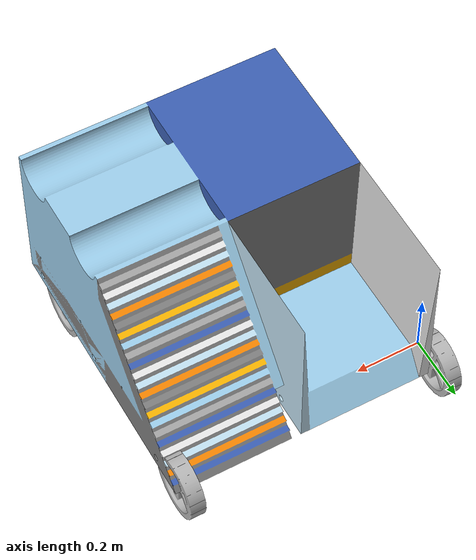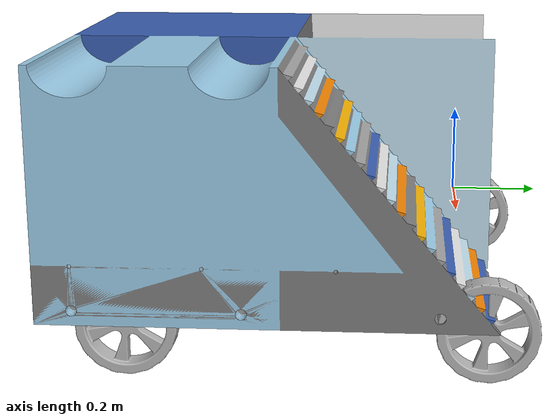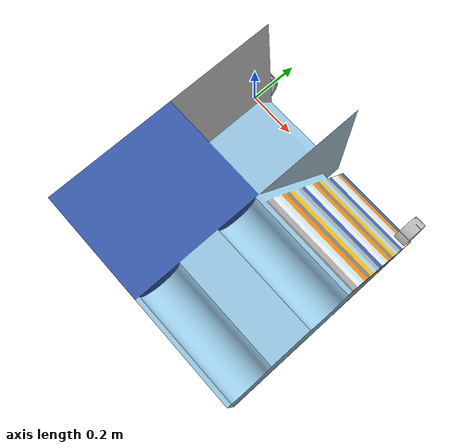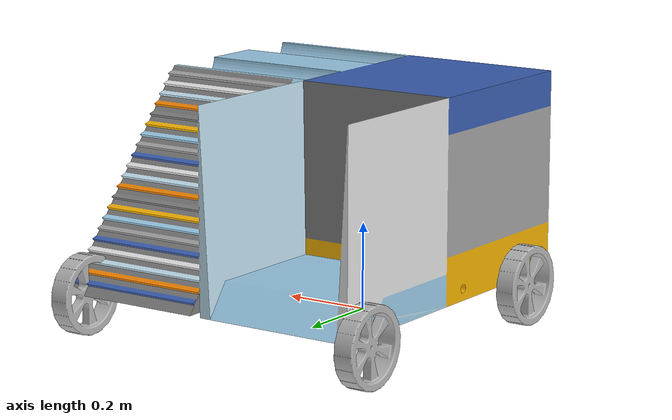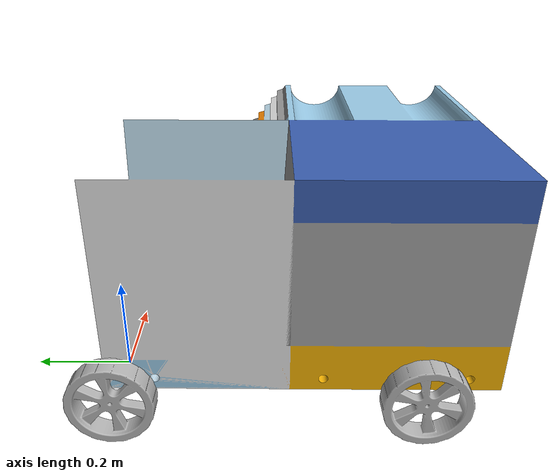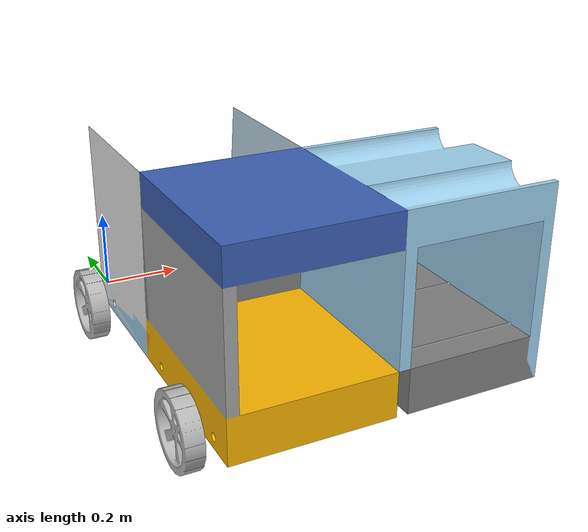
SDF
<?xml version="1.0"?>
<sdf version="1.8">

  <model name="R1">
    <static>false</static>

    <!-- ================= BASE ================= -->
    <link name="base_link">
      <inertial>
        <pose>0.419 -0.448 0.116 0 0 0</pose>
        <mass>183.77</mass>
        <inertia>
          <ixx>15.435</ixx>
          <ixy>-0.647</ixy>
          <ixz>0.276</ixz>
          <iyy>17.277</iyy>
          <iyz>1.909</iyz>
          <izz>21.853</izz>
        </inertia>
      </inertial>

      <collision name="base_collision">
        <pose>0 0 0 1.5707 0 0</pose>
        <geometry>
          <mesh>
            <uri>model://R1/meshes/R1.dae</uri>
          </mesh>
        </geometry>
        <surface>
          <contact>
            <ode>
              <kp>1e6</kp>
              <kd>100</kd>
              <max_vel>0.01</max_vel>
              <min_depth>0.001</min_depth>
            </ode>
          </contact>
        </surface>
      </collision>

      <visual name="base_visual">
        <pose>0 0 0 1.5707 0 0</pose>
        <geometry>
          <mesh>
            <uri>model://R1/meshes/R1.dae</uri>
          </mesh>
        </geometry>
      </visual>
    </link>

    <!-- ================= WHEELS ================= -->

    <!-- BACK LEFT -->
    <link name="back_left_wheel">
      <pose>0.82 0 -0.075 1.5707 0 0</pose>
      <inertial>
        <mass>0.5</mass>
        <inertia>
          <ixx>0.001</ixx>
          <iyy>0.001</iyy>
          <izz>0.001</izz>
        </inertia>
      </inertial>

      <collision name="collision">
        <geometry>
          <mesh>
            <uri>model://R1/meshes/wheel.dae</uri>
          </mesh>
        </geometry>
        <surface>
          <friction>
            <ode>
              <mu>0.4</mu>
              <mu2>0.2</mu2>
              <fdir1>0 1 0</fdir1>
            </ode>
          </friction>
        </surface>
      </collision>

      <visual name="visual">
        <geometry>
          <mesh>
            <uri>model://R1/meshes/wheel.dae</uri>
          </mesh>
        </geometry>
      </visual>
    </link>

    <joint name="back_left_wheel_joint" type="revolute">
      <parent>base_link</parent>
      <child>back_left_wheel</child>
      <axis>
        <xyz>1 0 0</xyz>
      </axis>
      <physics>
        <ode>
          <max_force>200</max_force>
        </ode>
      </physics>
    </joint>

    <!-- FRONT LEFT -->
    <link name="front_left_wheel">
      <pose>0.82 -0.700 -0.075 1.5707 0 0</pose>
      <inertial>
        <mass>0.5</mass>
        <inertia>
          <ixx>0.001</ixx>
          <iyy>0.001</iyy>
          <izz>0.001</izz>
        </inertia>
      </inertial>

      <collision name="collision">
        <geometry>
          <mesh>
            <uri>model://R1/meshes/wheel.dae</uri>
          </mesh>
        </geometry>
        <surface>
          <friction>
            <ode>
              <mu>0.4</mu>
              <mu2>0.2</mu2>
              <fdir1>0 1 0</fdir1>
            </ode>
          </friction>
        </surface>
      </collision>

      <visual name="visual">
        <geometry>
          <mesh>
            <uri>model://R1/meshes/wheel.dae</uri>
          </mesh>
        </geometry>
      </visual>
    </link>
    <joint name="front_left_wheel_joint" type="revolute">
      <parent>base_link</parent>
      <child>front_left_wheel</child>
      <axis>
        <xyz>1 0 0</xyz>
      </axis>
      <physics>
        <ode>
          <max_force>200</max_force>
        </ode>
      </physics>
    </joint>

    <!-- BACK RIGHT -->
    <link name="back_right_wheel">
      <pose>-0.01 0 -0.075 1.5707 0 0</pose>
      <inertial>
        <mass>0.5</mass>
        <inertia>
          <ixx>0.001</ixx>
          <iyy>0.001</iyy>
          <izz>0.001</izz>
        </inertia>
      </inertial>

      <collision name="collision">
        <geometry>
          <mesh>
            <uri>model://R1/meshes/wheel.dae</uri>
          </mesh>
        </geometry>
        <surface>
          <friction>
            <ode>
              <mu>0.4</mu>
              <mu2>0.2</mu2>
              <fdir1>0 1 0</fdir1>
            </ode>
          </friction>
        </surface>
      </collision>

      <visual name="visual">
        <geometry>
          <mesh>
            <uri>model://R1/meshes/wheel.dae</uri>
          </mesh>
        </geometry>
      </visual>
    </link>
    <joint name="back_right_wheel_joint" type="revolute">
      <parent>base_link</parent>
      <child>back_right_wheel</child>
      <axis>
        <xyz>1 0 0</xyz>
      </axis>
      <physics>
        <ode>
          <max_force>200</max_force>
        </ode>
      </physics>
    </joint>

    <!-- FRONT RIGHT -->
    <link name="front_right_wheel">
      <pose>-0.01 -0.700 -0.075 1.5707 0 0</pose>
      <inertial>
        <mass>0.5</mass>
        <inertia>
          <ixx>0.001</ixx>
          <iyy>0.001</iyy>
          <izz>0.001</izz>
        </inertia>
      </inertial>

      <collision name="collision">
        <geometry>
          <mesh>
            <uri>model://R1/meshes/wheel.dae</uri>
          </mesh>
        </geometry>
        <surface>
          <friction>
            <ode>
              <mu>0.4</mu>
              <mu2>0.2</mu2>
              <fdir1>0 1 0</fdir1>
            </ode>
          </friction>
        </surface>
      </collision>

      <visual name="visual">
        <geometry>
          <mesh>
            <uri>model://R1/meshes/wheel.dae</uri>
          </mesh>
        </geometry>
      </visual>
    </link>
    <joint name="front_right_wheel_joint" type="revolute">
      <parent>base_link</parent>
      <child>front_right_wheel</child>
      <axis>
        <xyz>1 0 0</xyz>
      </axis>
      <physics>
        <ode>
          <max_force>200</max_force>
        </ode>
      </physics>
    </joint>

    <!-- Individual Wheel Velocity Controllers -->
    <plugin filename="ignition-gazebo-joint-controller-system" name="ignition::gazebo::systems::JointController">
      <joint_name>front_left_wheel_joint</joint_name>
      <sub_topic>joint/front_left_wheel_joint/cmd_vel</sub_topic>
      <p_gain>1.0</p_gain>
    </plugin>
    <plugin filename="ignition-gazebo-joint-controller-system" name="ignition::gazebo::systems::JointController">
      <joint_name>front_right_wheel_joint</joint_name>
      <sub_topic>joint/front_right_wheel_joint/cmd_vel</sub_topic>
      <p_gain>1.0</p_gain>
    </plugin>
    <plugin filename="ignition-gazebo-joint-controller-system" name="ignition::gazebo::systems::JointController">
      <joint_name>back_left_wheel_joint</joint_name>
      <sub_topic>joint/back_left_wheel_joint/cmd_vel</sub_topic>
      <p_gain>1.0</p_gain>
    </plugin>
    <plugin filename="ignition-gazebo-joint-controller-system" name="ignition::gazebo::systems::JointController">
      <joint_name>back_right_wheel_joint</joint_name>
      <sub_topic>joint/back_right_wheel_joint/cmd_vel</sub_topic>
      <p_gain>1.0</p_gain>
    </plugin>

  </model>
</sdf>
